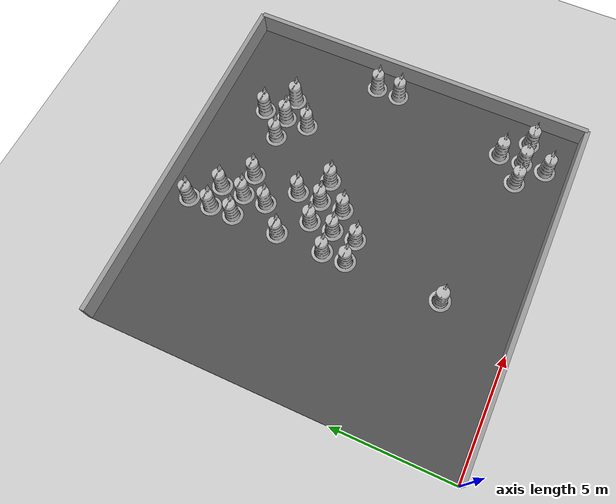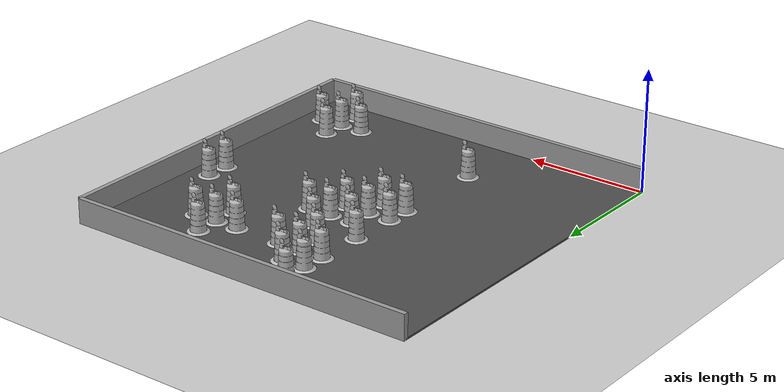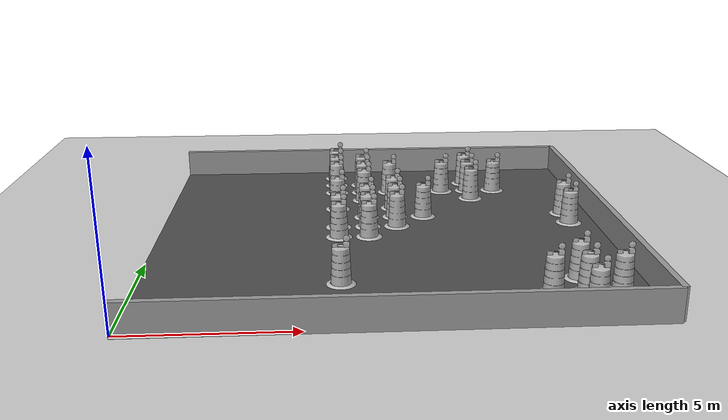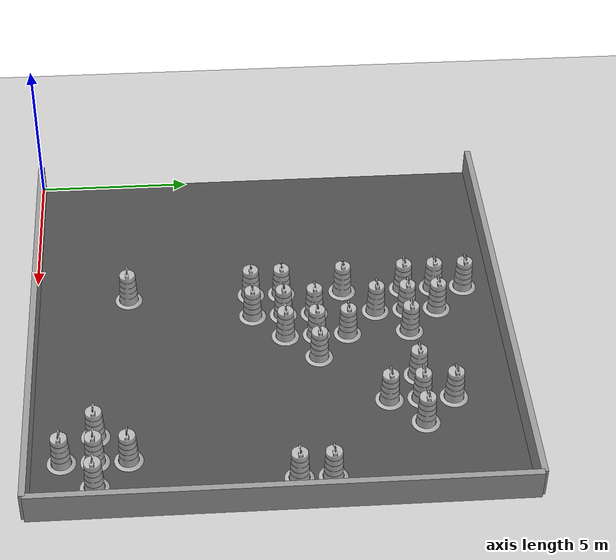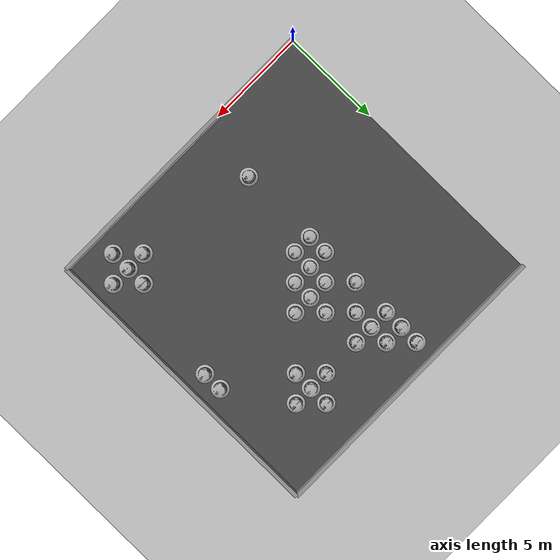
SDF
<sdf version="1.4">
 <world name="default">
  <include><uri>model://ground_plane</uri></include>
  <include><uri>model://sun</uri></include>
  <model name="grey_wall">
   <static>1</static>
   <link name="link">
    <visual name="visual">
     <cast_shadows>0</cast_shadows>
     <geometry><box><size>15 0.2 2</size></box></geometry>
     <material>
      <script>
       <uri>model://grey_wall/materials/scripts</uri>
       <uri>model://grey_wall/materials/textures</uri>
       <name>vrc/grey_wall</name>
      </script>
     </material>
    </visual>
   </link>
   <pose>7.5 0 0 0 0 0</pose>
  </model>
  <model name="grey_wall">
   <static>1</static>
   <link name="link">
    <visual name="visual">
     <cast_shadows>0</cast_shadows>
     <geometry><box><size>15 0.2 2</size></box></geometry>
     <material>
      <script>
       <uri>model://grey_wall/materials/scripts</uri>
       <uri>model://grey_wall/materials/textures</uri>
       <name>vrc/grey_wall</name>
      </script>
     </material>
    </visual>
   </link>
   <pose>15 7.5 0 0 0 -1.57079632679</pose>
  </model>
  <model name="grey_wall">
   <static>1</static>
   <link name="link">
    <visual name="visual">
     <cast_shadows>0</cast_shadows>
     <geometry><box><size>15 0.2 2</size></box></geometry>
     <material>
      <script>
       <uri>model://grey_wall/materials/scripts</uri>
       <uri>model://grey_wall/materials/textures</uri>
       <name>vrc/grey_wall</name>
      </script>
     </material>
    </visual>
   </link>
   <pose>7.5 15 0 0 0 3.14159265359</pose>
  </model>
  <model name="asphalt_plane">
   <static>1</static>
   <link name="link">
    <visual name="visual">
     <cast_shadows>0</cast_shadows>
     <geometry><box><size>15 15 0.1</size></box></geometry>
     <material>
      <script>
       <uri>model://asphalt_plane/materials/scripts</uri>
       <uri>model://asphalt_plane/materials/textures</uri>
       <name>vrc/asphalt</name>
      </script>
     </material>
    </visual>
   </link>
   <pose>7.5 7.5 0 0 0 0</pose>
  </model>
  <model name="Construction Barrel">
   <link name="link">
    <collision name="collision">
     <geometry>
      <mesh><uri>model://construction_barrel/meshes/construction_barrel.dae</uri><scale>1 1 1</scale></mesh>
     </geometry>
    </collision>
    <visual name="visual">
     <geometry><mesh><uri>model://construction_barrel/meshes/construction_barrel.dae</uri></mesh></geometry>
    </visual>
   </link>
   <pose>6 3 0 0 0 0</pose>
   <static>1</static>
  </model>
  <model name="Construction Barrel">
   <link name="link">
    <collision name="collision">
     <geometry>
      <mesh><uri>model://construction_barrel/meshes/construction_barrel.dae</uri><scale>1 1 1</scale></mesh>
     </geometry>
    </collision>
    <visual name="visual">
     <geometry><mesh><uri>model://construction_barrel/meshes/construction_barrel.dae</uri></mesh></geometry>
    </visual>
   </link>
   <pose>6 7 0 0 0 0</pose>
   <static>1</static>
  </model>
  <model name="Construction Barrel">
   <link name="link">
    <collision name="collision">
     <geometry>
      <mesh><uri>model://construction_barrel/meshes/construction_barrel.dae</uri><scale>1 1 1</scale></mesh>
     </geometry>
    </collision>
    <visual name="visual">
     <geometry><mesh><uri>model://construction_barrel/meshes/construction_barrel.dae</uri></mesh></geometry>
    </visual>
   </link>
   <pose>6 8 0 0 0 0</pose>
   <static>1</static>
  </model>
  <model name="Construction Barrel">
   <link name="link">
    <collision name="collision">
     <geometry>
      <mesh><uri>model://construction_barrel/meshes/construction_barrel.dae</uri><scale>1 1 1</scale></mesh>
     </geometry>
    </collision>
    <visual name="visual">
     <geometry><mesh><uri>model://construction_barrel/meshes/construction_barrel.dae</uri></mesh></geometry>
    </visual>
   </link>
   <pose>6 10 0 0 0 0</pose>
   <static>1</static>
  </model>
  <model name="Construction Barrel">
   <link name="link">
    <collision name="collision">
     <geometry>
      <mesh><uri>model://construction_barrel/meshes/construction_barrel.dae</uri><scale>1 1 1</scale></mesh>
     </geometry>
    </collision>
    <visual name="visual">
     <geometry><mesh><uri>model://construction_barrel/meshes/construction_barrel.dae</uri></mesh></geometry>
    </visual>
   </link>
   <pose>6 12 0 0 0 0</pose>
   <static>1</static>
  </model>
  <model name="Construction Barrel">
   <link name="link">
    <collision name="collision">
     <geometry>
      <mesh><uri>model://construction_barrel/meshes/construction_barrel.dae</uri><scale>1 1 1</scale></mesh>
     </geometry>
    </collision>
    <visual name="visual">
     <geometry><mesh><uri>model://construction_barrel/meshes/construction_barrel.dae</uri></mesh></geometry>
    </visual>
   </link>
   <pose>6 13 0 0 0 0</pose>
   <static>1</static>
  </model>
  <model name="Construction Barrel">
   <link name="link">
    <collision name="collision">
     <geometry>
      <mesh><uri>model://construction_barrel/meshes/construction_barrel.dae</uri><scale>1 1 1</scale></mesh>
     </geometry>
    </collision>
    <visual name="visual">
     <geometry><mesh><uri>model://construction_barrel/meshes/construction_barrel.dae</uri></mesh></geometry>
    </visual>
   </link>
   <pose>6 14 0 0 0 0</pose>
   <static>1</static>
  </model>
  <model name="Construction Barrel">
   <link name="link">
    <collision name="collision">
     <geometry>
      <mesh><uri>model://construction_barrel/meshes/construction_barrel.dae</uri><scale>1 1 1</scale></mesh>
     </geometry>
    </collision>
    <visual name="visual">
     <geometry><mesh><uri>model://construction_barrel/meshes/construction_barrel.dae</uri></mesh></geometry>
    </visual>
   </link>
   <pose>7 7 0 0 0 0</pose>
   <static>1</static>
  </model>
  <model name="Construction Barrel">
   <link name="link">
    <collision name="collision">
     <geometry>
      <mesh><uri>model://construction_barrel/meshes/construction_barrel.dae</uri><scale>1 1 1</scale></mesh>
     </geometry>
    </collision>
    <visual name="visual">
     <geometry><mesh><uri>model://construction_barrel/meshes/construction_barrel.dae</uri></mesh></geometry>
    </visual>
   </link>
   <pose>7 8 0 0 0 0</pose>
   <static>1</static>
  </model>
  <model name="Construction Barrel">
   <link name="link">
    <collision name="collision">
     <geometry>
      <mesh><uri>model://construction_barrel/meshes/construction_barrel.dae</uri><scale>1 1 1</scale></mesh>
     </geometry>
    </collision>
    <visual name="visual">
     <geometry><mesh><uri>model://construction_barrel/meshes/construction_barrel.dae</uri></mesh></geometry>
    </visual>
   </link>
   <pose>7 9 0 0 0 0</pose>
   <static>1</static>
  </model>
  <model name="Construction Barrel">
   <link name="link">
    <collision name="collision">
     <geometry>
      <mesh><uri>model://construction_barrel/meshes/construction_barrel.dae</uri><scale>1 1 1</scale></mesh>
     </geometry>
    </collision>
    <visual name="visual">
     <geometry><mesh><uri>model://construction_barrel/meshes/construction_barrel.dae</uri></mesh></geometry>
    </visual>
   </link>
   <pose>7 11 0 0 0 0</pose>
   <static>1</static>
  </model>
  <model name="Construction Barrel">
   <link name="link">
    <collision name="collision">
     <geometry>
      <mesh><uri>model://construction_barrel/meshes/construction_barrel.dae</uri><scale>1 1 1</scale></mesh>
     </geometry>
    </collision>
    <visual name="visual">
     <geometry><mesh><uri>model://construction_barrel/meshes/construction_barrel.dae</uri></mesh></geometry>
    </visual>
   </link>
   <pose>7 12 0 0 0 0</pose>
   <static>1</static>
  </model>
  <model name="Construction Barrel">
   <link name="link">
    <collision name="collision">
     <geometry>
      <mesh><uri>model://construction_barrel/meshes/construction_barrel.dae</uri><scale>1 1 1</scale></mesh>
     </geometry>
    </collision>
    <visual name="visual">
     <geometry><mesh><uri>model://construction_barrel/meshes/construction_barrel.dae</uri></mesh></geometry>
    </visual>
   </link>
   <pose>7 13 0 0 0 0</pose>
   <static>1</static>
  </model>
  <model name="Construction Barrel">
   <link name="link">
    <collision name="collision">
     <geometry>
      <mesh><uri>model://construction_barrel/meshes/construction_barrel.dae</uri><scale>1 1 1</scale></mesh>
     </geometry>
    </collision>
    <visual name="visual">
     <geometry><mesh><uri>model://construction_barrel/meshes/construction_barrel.dae</uri></mesh></geometry>
    </visual>
   </link>
   <pose>8 8 0 0 0 0</pose>
   <static>1</static>
  </model>
  <model name="Construction Barrel">
   <link name="link">
    <collision name="collision">
     <geometry>
      <mesh><uri>model://construction_barrel/meshes/construction_barrel.dae</uri><scale>1 1 1</scale></mesh>
     </geometry>
    </collision>
    <visual name="visual">
     <geometry><mesh><uri>model://construction_barrel/meshes/construction_barrel.dae</uri></mesh></geometry>
    </visual>
   </link>
   <pose>8 9 0 0 0 0</pose>
   <static>1</static>
  </model>
  <model name="Construction Barrel">
   <link name="link">
    <collision name="collision">
     <geometry>
      <mesh><uri>model://construction_barrel/meshes/construction_barrel.dae</uri><scale>1 1 1</scale></mesh>
     </geometry>
    </collision>
    <visual name="visual">
     <geometry><mesh><uri>model://construction_barrel/meshes/construction_barrel.dae</uri></mesh></geometry>
    </visual>
   </link>
   <pose>8 10 0 0 0 0</pose>
   <static>1</static>
  </model>
  <model name="Construction Barrel">
   <link name="link">
    <collision name="collision">
     <geometry>
      <mesh><uri>model://construction_barrel/meshes/construction_barrel.dae</uri><scale>1 1 1</scale></mesh>
     </geometry>
    </collision>
    <visual name="visual">
     <geometry><mesh><uri>model://construction_barrel/meshes/construction_barrel.dae</uri></mesh></geometry>
    </visual>
   </link>
   <pose>8 12 0 0 0 0</pose>
   <static>1</static>
  </model>
  <model name="Construction Barrel">
   <link name="link">
    <collision name="collision">
     <geometry>
      <mesh><uri>model://construction_barrel/meshes/construction_barrel.dae</uri><scale>1 1 1</scale></mesh>
     </geometry>
    </collision>
    <visual name="visual">
     <geometry><mesh><uri>model://construction_barrel/meshes/construction_barrel.dae</uri></mesh></geometry>
    </visual>
   </link>
   <pose>9 9 0 0 0 0</pose>
   <static>1</static>
  </model>
  <model name="Construction Barrel">
   <link name="link">
    <collision name="collision">
     <geometry>
      <mesh><uri>model://construction_barrel/meshes/construction_barrel.dae</uri><scale>1 1 1</scale></mesh>
     </geometry>
    </collision>
    <visual name="visual">
     <geometry><mesh><uri>model://construction_barrel/meshes/construction_barrel.dae</uri></mesh></geometry>
    </visual>
   </link>
   <pose>10 12 0 0 0 0</pose>
   <static>1</static>
  </model>
  <model name="Construction Barrel">
   <link name="link">
    <collision name="collision">
     <geometry>
      <mesh><uri>model://construction_barrel/meshes/construction_barrel.dae</uri><scale>1 1 1</scale></mesh>
     </geometry>
    </collision>
    <visual name="visual">
     <geometry><mesh><uri>model://construction_barrel/meshes/construction_barrel.dae</uri></mesh></geometry>
    </visual>
   </link>
   <pose>11 11 0 0 0 0</pose>
   <static>1</static>
  </model>
  <model name="Construction Barrel">
   <link name="link">
    <collision name="collision">
     <geometry>
      <mesh><uri>model://construction_barrel/meshes/construction_barrel.dae</uri><scale>1 1 1</scale></mesh>
     </geometry>
    </collision>
    <visual name="visual">
     <geometry><mesh><uri>model://construction_barrel/meshes/construction_barrel.dae</uri></mesh></geometry>
    </visual>
   </link>
   <pose>11 12 0 0 0 0</pose>
   <static>1</static>
  </model>
  <model name="Construction Barrel">
   <link name="link">
    <collision name="collision">
     <geometry>
      <mesh><uri>model://construction_barrel/meshes/construction_barrel.dae</uri><scale>1 1 1</scale></mesh>
     </geometry>
    </collision>
    <visual name="visual">
     <geometry><mesh><uri>model://construction_barrel/meshes/construction_barrel.dae</uri></mesh></geometry>
    </visual>
   </link>
   <pose>11 13 0 0 0 0</pose>
   <static>1</static>
  </model>
  <model name="Construction Barrel">
   <link name="link">
    <collision name="collision">
     <geometry>
      <mesh><uri>model://construction_barrel/meshes/construction_barrel.dae</uri><scale>1 1 1</scale></mesh>
     </geometry>
    </collision>
    <visual name="visual">
     <geometry><mesh><uri>model://construction_barrel/meshes/construction_barrel.dae</uri></mesh></geometry>
    </visual>
   </link>
   <pose>12 2 0 0 0 0</pose>
   <static>1</static>
  </model>
  <model name="Construction Barrel">
   <link name="link">
    <collision name="collision">
     <geometry>
      <mesh><uri>model://construction_barrel/meshes/construction_barrel.dae</uri><scale>1 1 1</scale></mesh>
     </geometry>
    </collision>
    <visual name="visual">
     <geometry><mesh><uri>model://construction_barrel/meshes/construction_barrel.dae</uri></mesh></geometry>
    </visual>
   </link>
   <pose>12 12 0 0 0 0</pose>
   <static>1</static>
  </model>
  <model name="Construction Barrel">
   <link name="link">
    <collision name="collision">
     <geometry>
      <mesh><uri>model://construction_barrel/meshes/construction_barrel.dae</uri><scale>1 1 1</scale></mesh>
     </geometry>
    </collision>
    <visual name="visual">
     <geometry><mesh><uri>model://construction_barrel/meshes/construction_barrel.dae</uri></mesh></geometry>
    </visual>
   </link>
   <pose>13 1 0 0 0 0</pose>
   <static>1</static>
  </model>
  <model name="Construction Barrel">
   <link name="link">
    <collision name="collision">
     <geometry>
      <mesh><uri>model://construction_barrel/meshes/construction_barrel.dae</uri><scale>1 1 1</scale></mesh>
     </geometry>
    </collision>
    <visual name="visual">
     <geometry><mesh><uri>model://construction_barrel/meshes/construction_barrel.dae</uri></mesh></geometry>
    </visual>
   </link>
   <pose>13 2 0 0 0 0</pose>
   <static>1</static>
  </model>
  <model name="Construction Barrel">
   <link name="link">
    <collision name="collision">
     <geometry>
      <mesh><uri>model://construction_barrel/meshes/construction_barrel.dae</uri><scale>1 1 1</scale></mesh>
     </geometry>
    </collision>
    <visual name="visual">
     <geometry><mesh><uri>model://construction_barrel/meshes/construction_barrel.dae</uri></mesh></geometry>
    </visual>
   </link>
   <pose>13 3 0 0 0 0</pose>
   <static>1</static>
  </model>
  <model name="Construction Barrel">
   <link name="link">
    <collision name="collision">
     <geometry>
      <mesh><uri>model://construction_barrel/meshes/construction_barrel.dae</uri><scale>1 1 1</scale></mesh>
     </geometry>
    </collision>
    <visual name="visual">
     <geometry><mesh><uri>model://construction_barrel/meshes/construction_barrel.dae</uri></mesh></geometry>
    </visual>
   </link>
   <pose>14 2 0 0 0 0</pose>
   <static>1</static>
  </model>
  <model name="Construction Barrel">
   <link name="link">
    <collision name="collision">
     <geometry>
      <mesh><uri>model://construction_barrel/meshes/construction_barrel.dae</uri><scale>1 1 1</scale></mesh>
     </geometry>
    </collision>
    <visual name="visual">
     <geometry><mesh><uri>model://construction_barrel/meshes/construction_barrel.dae</uri></mesh></geometry>
    </visual>
   </link>
   <pose>14 8 0 0 0 0</pose>
   <static>1</static>
  </model>
  <model name="Construction Barrel">
   <link name="link">
    <collision name="collision">
     <geometry>
      <mesh><uri>model://construction_barrel/meshes/construction_barrel.dae</uri><scale>1 1 1</scale></mesh>
     </geometry>
    </collision>
    <visual name="visual">
     <geometry><mesh><uri>model://construction_barrel/meshes/construction_barrel.dae</uri></mesh></geometry>
    </visual>
   </link>
   <pose>14 9 0 0 0 0</pose>
   <static>1</static>
  </model>
 </world>
</sdf>
